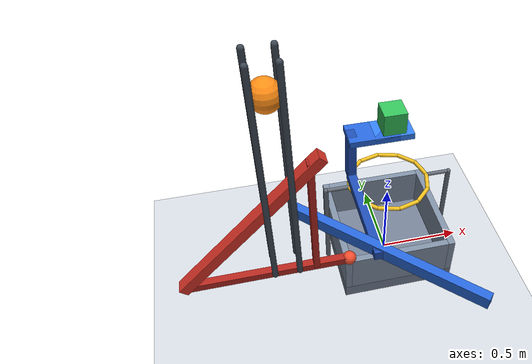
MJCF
<mujoco model="gravity_triggered_slider_release">
  <compiler angle="degree" autolimits="true"/>
  <option timestep="0.002" gravity="0 0 -9.81" integrator="implicitfast" cone="elliptic" iterations="100"/>
  <size njmax="2000" nconmax="400"/>
  <visual>
    <headlight ambient="0.35 0.35 0.35" diffuse="0.7 0.7 0.7" specular="0.2 0.2 0.2"/>
  </visual>

  <worldbody>
    <light name="overhead_light" pos="-1 -2 4" dir="0.2 0.4 -1"/>
    <camera name="overview" pos="2.4 -3.4 2.3" xyaxes="0.817 0.577 0 -0.250 0.354 0.901"/>
    <geom name="floor" type="plane" size="4 4 0.1" rgba="0.82 0.84 0.87 1" friction="0.8 0.01 0.001"/>

    <!-- Four narrow guide rods constrain the ball without obstructing the moving ramp. -->
    <body name="ball_guide">
      <geom name="ball_guide_1" type="capsule" fromto="-0.76 -0.66 0.75 -0.76 -0.66 1.90" size="0.014" rgba="0.25 0.29 0.34 1" friction="0.02 0.001 0.0001"/>
      <geom name="ball_guide_2" type="capsule" fromto="-0.76 -0.54 0.75 -0.76 -0.54 1.90" size="0.014" rgba="0.25 0.29 0.34 1" friction="0.02 0.001 0.0001"/>
      <geom name="ball_guide_3" type="capsule" fromto="-0.64 -0.66 0.75 -0.64 -0.66 1.90" size="0.014" rgba="0.25 0.29 0.34 1" friction="0.02 0.001 0.0001"/>
      <geom name="ball_guide_4" type="capsule" fromto="-0.64 -0.54 0.75 -0.64 -0.54 1.90" size="0.014" rgba="0.25 0.29 0.34 1" friction="0.02 0.001 0.0001"/>
    </body>

    <!-- The initial sphere center is 0.400 m above its first ramp-contact height. -->
    <body name="ball" pos="-0.70 -0.60 1.7343503">
      <freejoint name="ball_free"/>
      <geom name="ball_sphere" type="sphere" size="0.07" mass="2.0" rgba="1 0.55 0.08 1" friction="0.02 0.001 0.0001" solref="0.012 1"/>
    </body>

    <!-- A descending ball drives this 45-degree ramp in the positive x direction. -->
    <body name="slider1" pos="-0.70 -0.60 1.20">
      <joint name="slider1_slide" type="slide" axis="1 0 0" range="0 0.44" damping="1.0" frictionloss="0.03" solreflimit="0.012 1"/>
      <geom name="slider1_ramp" type="box" pos="-0.15 0 -0.15" quat="0.923879533 0 -0.382683432 0" size="0.50 0.032 0.025" mass="0.35" rgba="0.85 0.20 0.15 1" friction="0.02 0.001 0.0001" solref="0.012 1"/>
      <geom name="slider1_lower_arm" type="box" pos="-0.09 0 -0.50" size="0.41 0.020 0.019" mass="0.15" rgba="0.70 0.15 0.12 1" friction="0.02 0.001 0.0001"/>
      <geom name="slider1_ramp_brace" type="box" pos="0.15 0 -0.16" size="0.015 0.022 0.34" mass="0.05" rgba="0.70 0.15 0.12 1" friction="0.02 0.001 0.0001"/>
      <geom name="slider1_pusher" type="sphere" pos="0.32 0 -0.50" size="0.035" mass="0.05" rgba="0.95 0.30 0.18 1" friction="0.02 0.001 0.0001" solref="0.012 1"/>
    </body>

    <!-- The pusher first crosses a roughly 0.11 m gap, then engages this diagonal cam. -->
    <!-- Cam contact converts positive-x motion into positive-y support withdrawal. -->
    <body name="slider2" pos="0 0 1.00">
      <joint name="slider2_slide" type="slide" axis="0 1 0" range="0 0.36" damping="1.0" frictionloss="0.03" solreflimit="0.012 1"/>
      <geom name="slider2_cam" type="box" pos="-0.20 -0.60 -0.30" quat="0.923879533 0 0 -0.382683432" size="0.58 0.025 0.035" mass="0.20" rgba="0.15 0.40 0.85 1" friction="0.02 0.001 0.0001" solref="0.012 1"/>
      <geom name="slider2_cam_connector" type="box" pos="-0.215 -0.60 -0.30" size="0.040 0.025 0.025" mass="0.04" rgba="0.12 0.30 0.70 1" friction="0.02 0.001 0.0001"/>
      <geom name="slider2_side_beam" type="box" pos="-0.23 -0.30 -0.30" size="0.025 0.30 0.025" mass="0.08" rgba="0.12 0.30 0.70 1" friction="0.02 0.001 0.0001"/>
      <geom name="slider2_support_riser" type="box" pos="-0.23 0 -0.15" size="0.025 0.035 0.15" mass="0.08" rgba="0.12 0.30 0.70 1" friction="0.02 0.001 0.0001"/>
      <geom name="slider2_support_arm" type="box" pos="-0.115 0 -0.018" size="0.14 0.080 0.018" mass="0.08" rgba="0.15 0.40 0.85 1" friction="0.015 0.001 0.0001"/>
      <geom name="slider2_support_pad" type="box" pos="0 0 -0.018" size="0.11 0.080 0.018" mass="0.12" rgba="0.20 0.50 0.95 1" friction="0.015 0.001 0.0001" solref="0.012 1"/>
    </body>

    <body name="block" pos="0 0 1.065">
      <freejoint name="block_free"/>
      <geom name="block_cube" type="box" size="0.065 0.065 0.065" mass="0.30" rgba="0.20 0.75 0.35 1" friction="0.015 0.001 0.0001" solref="0.012 1"/>
    </body>

    <body name="hoop" pos="0 0 0.60">
      <geom name="hoop_ring_01" type="capsule" fromto="0.240000 0 0 0.207846 0.120000 0" size="0.012" rgba="0.95 0.75 0.12 1" friction="0.2 0.005 0.0001"/>
      <geom name="hoop_ring_02" type="capsule" fromto="0.207846 0.120000 0 0.120000 0.207846 0" size="0.012" rgba="0.95 0.75 0.12 1" friction="0.2 0.005 0.0001"/>
      <geom name="hoop_ring_03" type="capsule" fromto="0.120000 0.207846 0 0 0.240000 0" size="0.012" rgba="0.95 0.75 0.12 1" friction="0.2 0.005 0.0001"/>
      <geom name="hoop_ring_04" type="capsule" fromto="0 0.240000 0 -0.120000 0.207846 0" size="0.012" rgba="0.95 0.75 0.12 1" friction="0.2 0.005 0.0001"/>
      <geom name="hoop_ring_05" type="capsule" fromto="-0.120000 0.207846 0 -0.207846 0.120000 0" size="0.012" rgba="0.95 0.75 0.12 1" friction="0.2 0.005 0.0001"/>
      <geom name="hoop_ring_06" type="capsule" fromto="-0.207846 0.120000 0 -0.240000 0 0" size="0.012" rgba="0.95 0.75 0.12 1" friction="0.2 0.005 0.0001"/>
      <geom name="hoop_ring_07" type="capsule" fromto="-0.240000 0 0 -0.207846 -0.120000 0" size="0.012" rgba="0.95 0.75 0.12 1" friction="0.2 0.005 0.0001"/>
      <geom name="hoop_ring_08" type="capsule" fromto="-0.207846 -0.120000 0 -0.120000 -0.207846 0" size="0.012" rgba="0.95 0.75 0.12 1" friction="0.2 0.005 0.0001"/>
      <geom name="hoop_ring_09" type="capsule" fromto="-0.120000 -0.207846 0 0 -0.240000 0" size="0.012" rgba="0.95 0.75 0.12 1" friction="0.2 0.005 0.0001"/>
      <geom name="hoop_ring_10" type="capsule" fromto="0 -0.240000 0 0.120000 -0.207846 0" size="0.012" rgba="0.95 0.75 0.12 1" friction="0.2 0.005 0.0001"/>
      <geom name="hoop_ring_11" type="capsule" fromto="0.120000 -0.207846 0 0.207846 -0.120000 0" size="0.012" rgba="0.95 0.75 0.12 1" friction="0.2 0.005 0.0001"/>
      <geom name="hoop_ring_12" type="capsule" fromto="0.207846 -0.120000 0 0.240000 0 0" size="0.012" rgba="0.95 0.75 0.12 1" friction="0.2 0.005 0.0001"/>
      <geom name="hoop_left_post" type="capsule" fromto="-0.38 0 -0.585 -0.38 0 0" size="0.015" rgba="0.40 0.43 0.47 1"/>
      <geom name="hoop_right_post" type="capsule" fromto="0.38 0 -0.585 0.38 0 0" size="0.015" rgba="0.40 0.43 0.47 1"/>
      <geom name="hoop_left_brace" type="capsule" fromto="-0.38 0 0 -0.24 0 0" size="0.012" rgba="0.40 0.43 0.47 1"/>
      <geom name="hoop_right_brace" type="capsule" fromto="0.24 0 0 0.38 0 0" size="0.012" rgba="0.40 0.43 0.47 1"/>
    </body>

    <body name="box">
      <geom name="box_bottom" type="box" pos="0 0 0.04" size="0.34 0.34 0.04" rgba="0.45 0.50 0.58 1" friction="0.7 0.01 0.001" solref="0.015 1"/>
      <geom name="box_left_wall" type="box" pos="-0.32 0 0.20" size="0.02 0.34 0.12" rgba="0.50 0.56 0.64 1" friction="0.7 0.01 0.001"/>
      <geom name="box_right_wall" type="box" pos="0.32 0 0.20" size="0.02 0.34 0.12" rgba="0.50 0.56 0.64 1" friction="0.7 0.01 0.001"/>
      <geom name="box_front_wall" type="box" pos="0 -0.32 0.20" size="0.30 0.02 0.12" rgba="0.50 0.56 0.64 1" friction="0.7 0.01 0.001"/>
      <geom name="box_back_wall" type="box" pos="0 0.32 0.20" size="0.30 0.02 0.12" rgba="0.50 0.56 0.64 1" friction="0.7 0.01 0.001"/>
    </body>
  </worldbody>
</mujoco>
